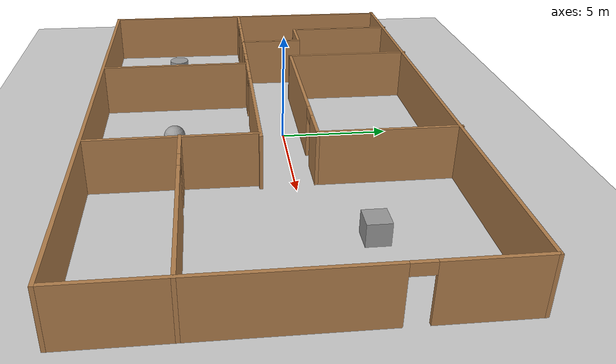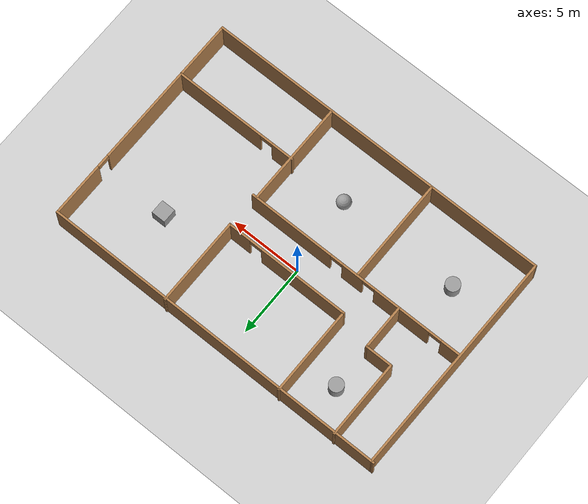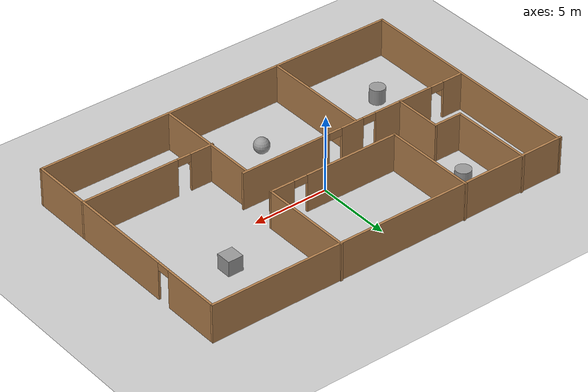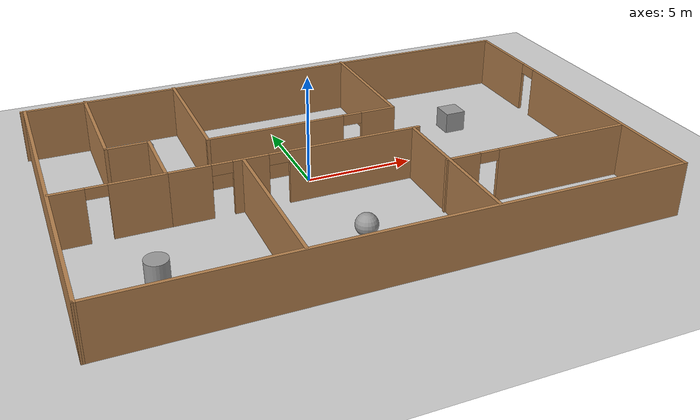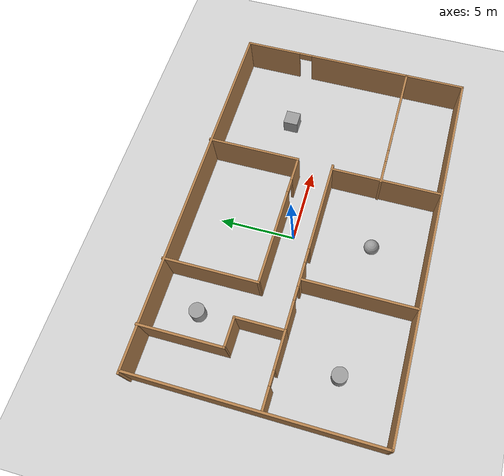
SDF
<sdf version="1.7">
 <world name="default">
  <model name="ground_plane">
   <static>1</static>
   <link name="link">
    <collision name="collision">
     <geometry><plane><normal>0 0 1</normal><size>100 100</size></plane></geometry>
     <surface>
      <contact><collide_bitmask>65535</collide_bitmask></contact>
      <friction><ode><mu>100</mu><mu2>50</mu2></ode></friction>
     </surface>
    </collision>
    <visual name="visual">
     <cast_shadows>0</cast_shadows>
     <geometry><plane><normal>0 0 1</normal><size>100 100</size></plane></geometry>
     <material>
      <script><uri>file://media/materials/scripts/gazebo.material</uri><name>Gazebo/Grey</name></script>
     </material>
    </visual>
   </link>
  </model>
  <model name="aki_home">
   <link name="Wall_35">
    <pose>0.000337 7.80034 0 0 -0 3.14159</pose>
    <visual name="Wall_35_Visual">
     <pose>0 0 1.25 0 -0 0</pose>
     <geometry><box><size>24.75 0.15 2.5</size></box></geometry>
     <material>
      <script><uri>file://media/materials/scripts/gazebo.material</uri><name>Gazebo/Wood</name></script>
      <ambient>1 1 1 1</ambient>
      <shader type="pixel"/>
     </material>
     <meta><layer>0</layer></meta>
    </visual>
    <collision name="Wall_35_Collision">
     <pose>0 0 1.25 0 -0 0</pose>
     <geometry><box><size>24.75 0.15 2.5</size></box></geometry>
     <surface>
      <friction>
       <ode><mu>1</mu><mu2>1</mu2><fdir1>0 0 0</fdir1><slip1>0</slip1><slip2>0</slip2></ode>
       <torsional>
        <coefficient>1</coefficient>
        <patch_radius>0</patch_radius>
        <surface_radius>0</surface_radius>
        <use_patch_radius>1</use_patch_radius>
        <ode><slip>0</slip></ode>
       </torsional>
      </friction>
      <bounce><restitution_coefficient>0</restitution_coefficient><threshold>1e+06</threshold></bounce>
      <contact>
       <collide_without_contact>0</collide_without_contact>
       <collide_without_contact_bitmask>1</collide_without_contact_bitmask>
       <collide_bitmask>1</collide_bitmask>
       <ode>
        <soft_cfm>0</soft_cfm>
        <soft_erp>0.2</soft_erp>
        <kp>1e+13</kp>
        <kd>1</kd>
        <max_vel>0.01</max_vel>
        <min_depth>0</min_depth>
       </ode>
       <bullet>
        <split_impulse>1</split_impulse>
        <split_impulse_penetration_threshold>-0.01</split_impulse_penetration_threshold>
        <soft_cfm>0</soft_cfm>
        <soft_erp>0.2</soft_erp>
        <kp>1e+13</kp>
        <kd>1</kd>
       </bullet>
      </contact>
     </surface>
    </collision>
   </link>
   <link name="Wall_36">
    <pose>-12.2289 -0.035042 0 0 0 -1.57983</pose>
    <visual name="Wall_36_Visual">
     <pose>0 0 1.25 0 -0 0</pose>
     <geometry><box><size>15.8214 0.15 2.5</size></box></geometry>
     <material>
      <script><uri>file://media/materials/scripts/gazebo.material</uri><name>Gazebo/Wood</name></script>
      <ambient>1 1 1 1</ambient>
      <shader type="pixel"/>
     </material>
     <meta><layer>0</layer></meta>
    </visual>
    <collision name="Wall_36_Collision">
     <pose>0 0 1.25 0 -0 0</pose>
     <geometry><box><size>15.8214 0.15 2.5</size></box></geometry>
     <surface>
      <friction>
       <ode><mu>1</mu><mu2>1</mu2><fdir1>0 0 0</fdir1><slip1>0</slip1><slip2>0</slip2></ode>
       <torsional>
        <coefficient>1</coefficient>
        <patch_radius>0</patch_radius>
        <surface_radius>0</surface_radius>
        <use_patch_radius>1</use_patch_radius>
        <ode><slip>0</slip></ode>
       </torsional>
      </friction>
      <bounce><restitution_coefficient>0</restitution_coefficient><threshold>1e+06</threshold></bounce>
      <contact>
       <collide_without_contact>0</collide_without_contact>
       <collide_without_contact_bitmask>1</collide_without_contact_bitmask>
       <collide_bitmask>1</collide_bitmask>
       <ode>
        <soft_cfm>0</soft_cfm>
        <soft_erp>0.2</soft_erp>
        <kp>1e+13</kp>
        <kd>1</kd>
        <max_vel>0.01</max_vel>
        <min_depth>0</min_depth>
       </ode>
       <bullet>
        <split_impulse>1</split_impulse>
        <split_impulse_penetration_threshold>-0.01</split_impulse_penetration_threshold>
        <soft_cfm>0</soft_cfm>
        <soft_erp>0.2</soft_erp>
        <kp>1e+13</kp>
        <kd>1</kd>
       </bullet>
      </contact>
     </surface>
    </collision>
   </link>
   <link name="Wall_37">
    <pose>0.000337 -7.87042 0 0 -0 0</pose>
    <visual name="Wall_37_Visual">
     <pose>0 0 1.25 0 -0 0</pose>
     <geometry><box><size>24.75 0.15 2.5</size></box></geometry>
     <material>
      <script><uri>file://media/materials/scripts/gazebo.material</uri><name>Gazebo/Wood</name></script>
      <ambient>1 1 1 1</ambient>
      <shader type="pixel"/>
     </material>
     <meta><layer>0</layer></meta>
    </visual>
    <collision name="Wall_37_Collision">
     <pose>0 0 1.25 0 -0 0</pose>
     <geometry><box><size>24.75 0.15 2.5</size></box></geometry>
     <surface>
      <friction>
       <ode><mu>1</mu><mu2>1</mu2><fdir1>0 0 0</fdir1><slip1>0</slip1><slip2>0</slip2></ode>
       <torsional>
        <coefficient>1</coefficient>
        <patch_radius>0</patch_radius>
        <surface_radius>0</surface_radius>
        <use_patch_radius>1</use_patch_radius>
        <ode><slip>0</slip></ode>
       </torsional>
      </friction>
      <bounce><restitution_coefficient>0</restitution_coefficient><threshold>1e+06</threshold></bounce>
      <contact>
       <collide_without_contact>0</collide_without_contact>
       <collide_without_contact_bitmask>1</collide_without_contact_bitmask>
       <collide_bitmask>1</collide_bitmask>
       <ode>
        <soft_cfm>0</soft_cfm>
        <soft_erp>0.2</soft_erp>
        <kp>1e+13</kp>
        <kd>1</kd>
        <max_vel>0.01</max_vel>
        <min_depth>0</min_depth>
       </ode>
       <bullet>
        <split_impulse>1</split_impulse>
        <split_impulse_penetration_threshold>-0.01</split_impulse_penetration_threshold>
        <soft_cfm>0</soft_cfm>
        <soft_erp>0.2</soft_erp>
        <kp>1e+13</kp>
        <kd>1</kd>
       </bullet>
      </contact>
     </surface>
    </collision>
   </link>
   <link name="Wall_38">
    <pose>12.3003 -0.070421 0 0 -0 1.5708</pose>
    <visual name="Wall_38_Visual_0">
     <pose>-2.34983 0 1.25 0 -0 0</pose>
     <geometry><box><size>11.0503 0.15 2.5</size></box></geometry>
     <material>
      <script><uri>file://media/materials/scripts/gazebo.material</uri><name>Gazebo/Wood</name></script>
      <ambient>1 1 1 1</ambient>
      <shader type="pixel"/>
     </material>
     <meta><layer>0</layer></meta>
    </visual>
    <visual name="Wall_38_Visual_1">
     <pose>5.97517 0 1.25 0 -0 0</pose>
     <geometry><box><size>3.79967 0.15 2.5</size></box></geometry>
     <material>
      <script><uri>file://media/materials/scripts/gazebo.material</uri><name>Gazebo/Wood</name></script>
      <ambient>1 1 1 1</ambient>
      <shader type="pixel"/>
     </material>
     <meta><layer>0</layer></meta>
    </visual>
    <visual name="Wall_38_Visual_2">
     <pose>3.62533 0 2.25 0 -0 0</pose>
     <geometry><box><size>0.9 0.15 0.5</size></box></geometry>
     <material>
      <script><uri>file://media/materials/scripts/gazebo.material</uri><name>Gazebo/Wood</name></script>
      <ambient>1 1 1 1</ambient>
      <shader type="pixel"/>
     </material>
     <meta><layer>0</layer></meta>
    </visual>
    <collision name="Wall_38_Collision_0">
     <pose>-2.34983 0 1.25 0 -0 0</pose>
     <geometry><box><size>11.0503 0.15 2.5</size></box></geometry>
     <surface>
      <friction>
       <ode><mu>1</mu><mu2>1</mu2><fdir1>0 0 0</fdir1><slip1>0</slip1><slip2>0</slip2></ode>
       <torsional>
        <coefficient>1</coefficient>
        <patch_radius>0</patch_radius>
        <surface_radius>0</surface_radius>
        <use_patch_radius>1</use_patch_radius>
        <ode><slip>0</slip></ode>
       </torsional>
      </friction>
      <bounce><restitution_coefficient>0</restitution_coefficient><threshold>1e+06</threshold></bounce>
      <contact>
       <collide_without_contact>0</collide_without_contact>
       <collide_without_contact_bitmask>1</collide_without_contact_bitmask>
       <collide_bitmask>1</collide_bitmask>
       <ode>
        <soft_cfm>0</soft_cfm>
        <soft_erp>0.2</soft_erp>
        <kp>1e+13</kp>
        <kd>1</kd>
        <max_vel>0.01</max_vel>
        <min_depth>0</min_depth>
       </ode>
       <bullet>
        <split_impulse>1</split_impulse>
        <split_impulse_penetration_threshold>-0.01</split_impulse_penetration_threshold>
        <soft_cfm>0</soft_cfm>
        <soft_erp>0.2</soft_erp>
        <kp>1e+13</kp>
        <kd>1</kd>
       </bullet>
      </contact>
     </surface>
    </collision>
    <collision name="Wall_38_Collision_1">
     <pose>5.97517 0 1.25 0 -0 0</pose>
     <geometry><box><size>3.79967 0.15 2.5</size></box></geometry>
     <surface>
      <friction>
       <ode><mu>1</mu><mu2>1</mu2><fdir1>0 0 0</fdir1><slip1>0</slip1><slip2>0</slip2></ode>
       <torsional>
        <coefficient>1</coefficient>
        <patch_radius>0</patch_radius>
        <surface_radius>0</surface_radius>
        <use_patch_radius>1</use_patch_radius>
        <ode><slip>0</slip></ode>
       </torsional>
      </friction>
      <bounce><restitution_coefficient>0</restitution_coefficient><threshold>1e+06</threshold></bounce>
      <contact>
       <collide_without_contact>0</collide_without_contact>
       <collide_without_contact_bitmask>1</collide_without_contact_bitmask>
       <collide_bitmask>1</collide_bitmask>
       <ode>
        <soft_cfm>0</soft_cfm>
        <soft_erp>0.2</soft_erp>
        <kp>1e+13</kp>
        <kd>1</kd>
        <max_vel>0.01</max_vel>
        <min_depth>0</min_depth>
       </ode>
       <bullet>
        <split_impulse>1</split_impulse>
        <split_impulse_penetration_threshold>-0.01</split_impulse_penetration_threshold>
        <soft_cfm>0</soft_cfm>
        <soft_erp>0.2</soft_erp>
        <kp>1e+13</kp>
        <kd>1</kd>
       </bullet>
      </contact>
     </surface>
    </collision>
    <collision name="Wall_38_Collision_2">
     <pose>3.62533 0 2.25 0 -0 0</pose>
     <geometry><box><size>0.9 0.15 0.5</size></box></geometry>
     <surface>
      <friction>
       <ode><mu>1</mu><mu2>1</mu2><fdir1>0 0 0</fdir1><slip1>0</slip1><slip2>0</slip2></ode>
       <torsional>
        <coefficient>1</coefficient>
        <patch_radius>0</patch_radius>
        <surface_radius>0</surface_radius>
        <use_patch_radius>1</use_patch_radius>
        <ode><slip>0</slip></ode>
       </torsional>
      </friction>
      <bounce><restitution_coefficient>0</restitution_coefficient><threshold>1e+06</threshold></bounce>
      <contact>
       <collide_without_contact>0</collide_without_contact>
       <collide_without_contact_bitmask>1</collide_without_contact_bitmask>
       <collide_bitmask>1</collide_bitmask>
       <ode>
        <soft_cfm>0</soft_cfm>
        <soft_erp>0.2</soft_erp>
        <kp>1e+13</kp>
        <kd>1</kd>
        <max_vel>0.01</max_vel>
        <min_depth>0</min_depth>
       </ode>
       <bullet>
        <split_impulse>1</split_impulse>
        <split_impulse_penetration_threshold>-0.01</split_impulse_penetration_threshold>
        <soft_cfm>0</soft_cfm>
        <soft_erp>0.2</soft_erp>
        <kp>1e+13</kp>
        <kd>1</kd>
       </bullet>
      </contact>
     </surface>
    </collision>
   </link>
   <link name="Wall_40">
    <pose>3.66798 4.82109 0 0 0 -1.5708</pose>
    <visual name="Wall_40_Visual">
     <pose>0 0 1.25 0 -0 0</pose>
     <geometry><box><size>6.25 0.15 2.5</size></box></geometry>
     <material>
      <script><uri>file://media/materials/scripts/gazebo.material</uri><name>Gazebo/Wood</name></script>
      <ambient>1 1 1 1</ambient>
      <shader type="pixel"/>
     </material>
     <meta><layer>0</layer></meta>
    </visual>
    <collision name="Wall_40_Collision">
     <pose>0 0 1.25 0 -0 0</pose>
     <geometry><box><size>6.25 0.15 2.5</size></box></geometry>
     <surface>
      <friction>
       <ode><mu>1</mu><mu2>1</mu2><fdir1>0 0 0</fdir1><slip1>0</slip1><slip2>0</slip2></ode>
       <torsional>
        <coefficient>1</coefficient>
        <patch_radius>0</patch_radius>
        <surface_radius>0</surface_radius>
        <use_patch_radius>1</use_patch_radius>
        <ode><slip>0</slip></ode>
       </torsional>
      </friction>
      <bounce><restitution_coefficient>0</restitution_coefficient><threshold>1e+06</threshold></bounce>
      <contact>
       <collide_without_contact>0</collide_without_contact>
       <collide_without_contact_bitmask>1</collide_without_contact_bitmask>
       <collide_bitmask>1</collide_bitmask>
       <ode>
        <soft_cfm>0</soft_cfm>
        <soft_erp>0.2</soft_erp>
        <kp>1e+13</kp>
        <kd>1</kd>
        <max_vel>0.01</max_vel>
        <min_depth>0</min_depth>
       </ode>
       <bullet>
        <split_impulse>1</split_impulse>
        <split_impulse_penetration_threshold>-0.01</split_impulse_penetration_threshold>
        <soft_cfm>0</soft_cfm>
        <soft_erp>0.2</soft_erp>
        <kp>1e+13</kp>
        <kd>1</kd>
       </bullet>
      </contact>
     </surface>
    </collision>
   </link>
   <link name="Wall_41">
    <pose>-0.757024 1.77109 0 0 -0 3.14159</pose>
    <visual name="Wall_41_Visual_0">
     <pose>-3.66152 0 1.25 0 -0 0</pose>
     <geometry><box><size>1.67695 0.15 2.5</size></box></geometry>
     <material>
      <script><uri>file://media/materials/scripts/gazebo.material</uri><name>Gazebo/Wood</name></script>
      <ambient>1 1 1 1</ambient>
      <shader type="pixel"/>
     </material>
     <meta><layer>0</layer></meta>
    </visual>
    <visual name="Wall_41_Visual_1">
     <pose>1.28848 0 1.25 0 -0 0</pose>
     <geometry><box><size>6.42305 0.15 2.5</size></box></geometry>
     <material>
      <script><uri>file://media/materials/scripts/gazebo.material</uri><name>Gazebo/Wood</name></script>
      <ambient>1 1 1 1</ambient>
      <shader type="pixel"/>
     </material>
     <meta><layer>0</layer></meta>
    </visual>
    <visual name="Wall_41_Visual_2">
     <pose>-2.37304 0 2.25 0 -0 0</pose>
     <geometry><box><size>0.9 0.15 0.5</size></box></geometry>
     <material>
      <script><uri>file://media/materials/scripts/gazebo.material</uri><name>Gazebo/Wood</name></script>
      <ambient>1 1 1 1</ambient>
      <shader type="pixel"/>
     </material>
     <meta><layer>0</layer></meta>
    </visual>
    <collision name="Wall_41_Collision_0">
     <pose>-3.66152 0 1.25 0 -0 0</pose>
     <geometry><box><size>1.67695 0.15 2.5</size></box></geometry>
     <surface>
      <friction>
       <ode><mu>1</mu><mu2>1</mu2><fdir1>0 0 0</fdir1><slip1>0</slip1><slip2>0</slip2></ode>
       <torsional>
        <coefficient>1</coefficient>
        <patch_radius>0</patch_radius>
        <surface_radius>0</surface_radius>
        <use_patch_radius>1</use_patch_radius>
        <ode><slip>0</slip></ode>
       </torsional>
      </friction>
      <bounce><restitution_coefficient>0</restitution_coefficient><threshold>1e+06</threshold></bounce>
      <contact>
       <collide_without_contact>0</collide_without_contact>
       <collide_without_contact_bitmask>1</collide_without_contact_bitmask>
       <collide_bitmask>1</collide_bitmask>
       <ode>
        <soft_cfm>0</soft_cfm>
        <soft_erp>0.2</soft_erp>
        <kp>1e+13</kp>
        <kd>1</kd>
        <max_vel>0.01</max_vel>
        <min_depth>0</min_depth>
       </ode>
       <bullet>
        <split_impulse>1</split_impulse>
        <split_impulse_penetration_threshold>-0.01</split_impulse_penetration_threshold>
        <soft_cfm>0</soft_cfm>
        <soft_erp>0.2</soft_erp>
        <kp>1e+13</kp>
        <kd>1</kd>
       </bullet>
      </contact>
     </surface>
    </collision>
    <collision name="Wall_41_Collision_1">
     <pose>1.28848 0 1.25 0 -0 0</pose>
     <geometry><box><size>6.42305 0.15 2.5</size></box></geometry>
     <surface>
      <friction>
       <ode><mu>1</mu><mu2>1</mu2><fdir1>0 0 0</fdir1><slip1>0</slip1><slip2>0</slip2></ode>
       <torsional>
        <coefficient>1</coefficient>
        <patch_radius>0</patch_radius>
        <surface_radius>0</surface_radius>
        <use_patch_radius>1</use_patch_radius>
        <ode><slip>0</slip></ode>
       </torsional>
      </friction>
      <bounce><restitution_coefficient>0</restitution_coefficient><threshold>1e+06</threshold></bounce>
      <contact>
       <collide_without_contact>0</collide_without_contact>
       <collide_without_contact_bitmask>1</collide_without_contact_bitmask>
       <collide_bitmask>1</collide_bitmask>
       <ode>
        <soft_cfm>0</soft_cfm>
        <soft_erp>0.2</soft_erp>
        <kp>1e+13</kp>
        <kd>1</kd>
        <max_vel>0.01</max_vel>
        <min_depth>0</min_depth>
       </ode>
       <bullet>
        <split_impulse>1</split_impulse>
        <split_impulse_penetration_threshold>-0.01</split_impulse_penetration_threshold>
        <soft_cfm>0</soft_cfm>
        <soft_erp>0.2</soft_erp>
        <kp>1e+13</kp>
        <kd>1</kd>
       </bullet>
      </contact>
     </surface>
    </collision>
    <collision name="Wall_41_Collision_2">
     <pose>-2.37304 0 2.25 0 -0 0</pose>
     <geometry><box><size>0.9 0.15 0.5</size></box></geometry>
     <surface>
      <friction>
       <ode><mu>1</mu><mu2>1</mu2><fdir1>0 0 0</fdir1><slip1>0</slip1><slip2>0</slip2></ode>
       <torsional>
        <coefficient>1</coefficient>
        <patch_radius>0</patch_radius>
        <surface_radius>0</surface_radius>
        <use_patch_radius>1</use_patch_radius>
        <ode><slip>0</slip></ode>
       </torsional>
      </friction>
      <bounce><restitution_coefficient>0</restitution_coefficient><threshold>1e+06</threshold></bounce>
      <contact>
       <collide_without_contact>0</collide_without_contact>
       <collide_without_contact_bitmask>1</collide_without_contact_bitmask>
       <collide_bitmask>1</collide_bitmask>
       <ode>
        <soft_cfm>0</soft_cfm>
        <soft_erp>0.2</soft_erp>
        <kp>1e+13</kp>
        <kd>1</kd>
        <max_vel>0.01</max_vel>
        <min_depth>0</min_depth>
       </ode>
       <bullet>
        <split_impulse>1</split_impulse>
        <split_impulse_penetration_threshold>-0.01</split_impulse_penetration_threshold>
        <soft_cfm>0</soft_cfm>
        <soft_erp>0.2</soft_erp>
        <kp>1e+13</kp>
        <kd>1</kd>
       </bullet>
      </contact>
     </surface>
    </collision>
   </link>
   <link name="Wall_42">
    <pose>-5.18202 4.82109 0 0 -0 1.5708</pose>
    <visual name="Wall_42_Visual">
     <pose>0 0 1.25 0 -0 0</pose>
     <geometry><box><size>6.25 0.15 2.5</size></box></geometry>
     <material>
      <script><uri>file://media/materials/scripts/gazebo.material</uri><name>Gazebo/Wood</name></script>
      <ambient>1 1 1 1</ambient>
      <shader type="pixel"/>
     </material>
     <meta><layer>0</layer></meta>
    </visual>
    <collision name="Wall_42_Collision">
     <pose>0 0 1.25 0 -0 0</pose>
     <geometry><box><size>6.25 0.15 2.5</size></box></geometry>
     <surface>
      <friction>
       <ode><mu>1</mu><mu2>1</mu2><fdir1>0 0 0</fdir1><slip1>0</slip1><slip2>0</slip2></ode>
       <torsional>
        <coefficient>1</coefficient>
        <patch_radius>0</patch_radius>
        <surface_radius>0</surface_radius>
        <use_patch_radius>1</use_patch_radius>
        <ode><slip>0</slip></ode>
       </torsional>
      </friction>
      <bounce><restitution_coefficient>0</restitution_coefficient><threshold>1e+06</threshold></bounce>
      <contact>
       <collide_without_contact>0</collide_without_contact>
       <collide_without_contact_bitmask>1</collide_without_contact_bitmask>
       <collide_bitmask>1</collide_bitmask>
       <ode>
        <soft_cfm>0</soft_cfm>
        <soft_erp>0.2</soft_erp>
        <kp>1e+13</kp>
        <kd>1</kd>
        <max_vel>0.01</max_vel>
        <min_depth>0</min_depth>
       </ode>
       <bullet>
        <split_impulse>1</split_impulse>
        <split_impulse_penetration_threshold>-0.01</split_impulse_penetration_threshold>
        <soft_cfm>0</soft_cfm>
        <soft_erp>0.2</soft_erp>
        <kp>1e+13</kp>
        <kd>1</kd>
       </bullet>
      </contact>
     </surface>
    </collision>
   </link>
   <link name="Wall_49">
    <pose>-4.32757 -4.24051 0 0 0 -1.5708</pose>
    <visual name="Wall_49_Visual">
     <pose>0 0 1.25 0 -0 0</pose>
     <geometry><box><size>7.25 0.15 2.5</size></box></geometry>
     <material>
      <script><uri>file://media/materials/scripts/gazebo.material</uri><name>Gazebo/Wood</name></script>
      <ambient>1 1 1 1</ambient>
      <shader type="pixel"/>
     </material>
     <meta><layer>0</layer></meta>
    </visual>
    <collision name="Wall_49_Collision">
     <pose>0 0 1.25 0 -0 0</pose>
     <geometry><box><size>7.25 0.15 2.5</size></box></geometry>
     <surface>
      <friction>
       <ode><mu>1</mu><mu2>1</mu2><fdir1>0 0 0</fdir1><slip1>0</slip1><slip2>0</slip2></ode>
       <torsional>
        <coefficient>1</coefficient>
        <patch_radius>0</patch_radius>
        <surface_radius>0</surface_radius>
        <use_patch_radius>1</use_patch_radius>
        <ode><slip>0</slip></ode>
       </torsional>
      </friction>
      <bounce><restitution_coefficient>0</restitution_coefficient><threshold>1e+06</threshold></bounce>
      <contact>
       <collide_without_contact>0</collide_without_contact>
       <collide_without_contact_bitmask>1</collide_without_contact_bitmask>
       <collide_bitmask>1</collide_bitmask>
       <ode>
        <soft_cfm>0</soft_cfm>
        <soft_erp>0.2</soft_erp>
        <kp>1e+13</kp>
        <kd>1</kd>
        <max_vel>0.01</max_vel>
        <min_depth>0</min_depth>
       </ode>
       <bullet>
        <split_impulse>1</split_impulse>
        <split_impulse_penetration_threshold>-0.01</split_impulse_penetration_threshold>
        <soft_cfm>0</soft_cfm>
        <soft_erp>0.2</soft_erp>
        <kp>1e+13</kp>
        <kd>1</kd>
       </bullet>
      </contact>
     </surface>
    </collision>
   </link>
   <link name="Wall_51">
    <pose>3.52646 -4.21622 0 0 -0 1.5708</pose>
    <visual name="Wall_51_Visual">
     <pose>0 0 1.25 0 -0 0</pose>
     <geometry><box><size>7.25 0.15 2.5</size></box></geometry>
     <material>
      <script><uri>file://media/materials/scripts/gazebo.material</uri><name>Gazebo/Wood</name></script>
      <ambient>1 1 1 1</ambient>
      <shader type="pixel"/>
     </material>
     <meta><layer>0</layer></meta>
    </visual>
    <collision name="Wall_51_Collision">
     <pose>0 0 1.25 0 -0 0</pose>
     <geometry><box><size>7.25 0.15 2.5</size></box></geometry>
     <surface>
      <friction>
       <ode><mu>1</mu><mu2>1</mu2><fdir1>0 0 0</fdir1><slip1>0</slip1><slip2>0</slip2></ode>
       <torsional>
        <coefficient>1</coefficient>
        <patch_radius>0</patch_radius>
        <surface_radius>0</surface_radius>
        <use_patch_radius>1</use_patch_radius>
        <ode><slip>0</slip></ode>
       </torsional>
      </friction>
      <bounce><restitution_coefficient>0</restitution_coefficient><threshold>1e+06</threshold></bounce>
      <contact>
       <collide_without_contact>0</collide_without_contact>
       <collide_without_contact_bitmask>1</collide_without_contact_bitmask>
       <collide_bitmask>1</collide_bitmask>
       <ode>
        <soft_cfm>0</soft_cfm>
        <soft_erp>0.2</soft_erp>
        <kp>1e+13</kp>
        <kd>1</kd>
        <max_vel>0.01</max_vel>
        <min_depth>0</min_depth>
       </ode>
       <bullet>
        <split_impulse>1</split_impulse>
        <split_impulse_penetration_threshold>-0.01</split_impulse_penetration_threshold>
        <soft_cfm>0</soft_cfm>
        <soft_erp>0.2</soft_erp>
        <kp>1e+13</kp>
        <kd>1</kd>
       </bullet>
      </contact>
     </surface>
    </collision>
   </link>
   <link name="Wall_54">
    <pose>7.87534 -3.87458 0 0 -0 3.14159</pose>
    <visual name="Wall_54_Visual_0">
     <pose>-1.25578 0 1.25 0 -0 0</pose>
     <geometry><box><size>6.48843 0.15 2.5</size></box></geometry>
     <material>
      <script><uri>file://media/materials/scripts/gazebo.material</uri><name>Gazebo/Wood</name></script>
      <ambient>1 1 1 1</ambient>
      <shader type="pixel"/>
     </material>
     <meta><layer>0</layer></meta>
    </visual>
    <visual name="Wall_54_Visual_1">
     <pose>3.69422 0 1.25 0 -0 0</pose>
     <geometry><box><size>1.61157 0.15 2.5</size></box></geometry>
     <material>
      <script><uri>file://media/materials/scripts/gazebo.material</uri><name>Gazebo/Wood</name></script>
      <ambient>1 1 1 1</ambient>
      <shader type="pixel"/>
     </material>
     <meta><layer>0</layer></meta>
    </visual>
    <visual name="Wall_54_Visual_2">
     <pose>2.43843 0 2.25 0 -0 0</pose>
     <geometry><box><size>0.9 0.15 0.5</size></box></geometry>
     <material>
      <script><uri>file://media/materials/scripts/gazebo.material</uri><name>Gazebo/Wood</name></script>
      <ambient>1 1 1 1</ambient>
      <shader type="pixel"/>
     </material>
     <meta><layer>0</layer></meta>
    </visual>
    <collision name="Wall_54_Collision_0">
     <pose>-1.25578 0 1.25 0 -0 0</pose>
     <geometry><box><size>6.48843 0.15 2.5</size></box></geometry>
     <surface>
      <friction>
       <ode><mu>1</mu><mu2>1</mu2><fdir1>0 0 0</fdir1><slip1>0</slip1><slip2>0</slip2></ode>
       <torsional>
        <coefficient>1</coefficient>
        <patch_radius>0</patch_radius>
        <surface_radius>0</surface_radius>
        <use_patch_radius>1</use_patch_radius>
        <ode><slip>0</slip></ode>
       </torsional>
      </friction>
      <bounce><restitution_coefficient>0</restitution_coefficient><threshold>1e+06</threshold></bounce>
      <contact>
       <collide_without_contact>0</collide_without_contact>
       <collide_without_contact_bitmask>1</collide_without_contact_bitmask>
       <collide_bitmask>1</collide_bitmask>
       <ode>
        <soft_cfm>0</soft_cfm>
        <soft_erp>0.2</soft_erp>
        <kp>1e+13</kp>
        <kd>1</kd>
        <max_vel>0.01</max_vel>
        <min_depth>0</min_depth>
       </ode>
       <bullet>
        <split_impulse>1</split_impulse>
        <split_impulse_penetration_threshold>-0.01</split_impulse_penetration_threshold>
        <soft_cfm>0</soft_cfm>
        <soft_erp>0.2</soft_erp>
        <kp>1e+13</kp>
        <kd>1</kd>
       </bullet>
      </contact>
     </surface>
    </collision>
    <collision name="Wall_54_Collision_1">
     <pose>3.69422 0 1.25 0 -0 0</pose>
     <geometry><box><size>1.61157 0.15 2.5</size></box></geometry>
     <surface>
      <friction>
       <ode><mu>1</mu><mu2>1</mu2><fdir1>0 0 0</fdir1><slip1>0</slip1><slip2>0</slip2></ode>
       <torsional>
        <coefficient>1</coefficient>
        <patch_radius>0</patch_radius>
        <surface_radius>0</surface_radius>
        <use_patch_radius>1</use_patch_radius>
        <ode><slip>0</slip></ode>
       </torsional>
      </friction>
      <bounce><restitution_coefficient>0</restitution_coefficient><threshold>1e+06</threshold></bounce>
      <contact>
       <collide_without_contact>0</collide_without_contact>
       <collide_without_contact_bitmask>1</collide_without_contact_bitmask>
       <collide_bitmask>1</collide_bitmask>
       <ode>
        <soft_cfm>0</soft_cfm>
        <soft_erp>0.2</soft_erp>
        <kp>1e+13</kp>
        <kd>1</kd>
        <max_vel>0.01</max_vel>
        <min_depth>0</min_depth>
       </ode>
       <bullet>
        <split_impulse>1</split_impulse>
        <split_impulse_penetration_threshold>-0.01</split_impulse_penetration_threshold>
        <soft_cfm>0</soft_cfm>
        <soft_erp>0.2</soft_erp>
        <kp>1e+13</kp>
        <kd>1</kd>
       </bullet>
      </contact>
     </surface>
    </collision>
    <collision name="Wall_54_Collision_2">
     <pose>2.43843 0 2.25 0 -0 0</pose>
     <geometry><box><size>0.9 0.15 0.5</size></box></geometry>
     <surface>
      <friction>
       <ode><mu>1</mu><mu2>1</mu2><fdir1>0 0 0</fdir1><slip1>0</slip1><slip2>0</slip2></ode>
       <torsional>
        <coefficient>1</coefficient>
        <patch_radius>0</patch_radius>
        <surface_radius>0</surface_radius>
        <use_patch_radius>1</use_patch_radius>
        <ode><slip>0</slip></ode>
       </torsional>
      </friction>
      <bounce><restitution_coefficient>0</restitution_coefficient><threshold>1e+06</threshold></bounce>
      <contact>
       <collide_without_contact>0</collide_without_contact>
       <collide_without_contact_bitmask>1</collide_without_contact_bitmask>
       <collide_bitmask>1</collide_bitmask>
       <ode>
        <soft_cfm>0</soft_cfm>
        <soft_erp>0.2</soft_erp>
        <kp>1e+13</kp>
        <kd>1</kd>
        <max_vel>0.01</max_vel>
        <min_depth>0</min_depth>
       </ode>
       <bullet>
        <split_impulse>1</split_impulse>
        <split_impulse_penetration_threshold>-0.01</split_impulse_penetration_threshold>
        <soft_cfm>0</soft_cfm>
        <soft_erp>0.2</soft_erp>
        <kp>1e+13</kp>
        <kd>1</kd>
       </bullet>
      </contact>
     </surface>
    </collision>
   </link>
   <link name="Wall_56">
    <pose>-9.42208 5.19609 0 0 0 -1.5708</pose>
    <visual name="Wall_56_Visual">
     <pose>0 0 1.25 0 -0 0</pose>
     <geometry><box><size>5.5 0.15 2.5</size></box></geometry>
     <material>
      <script><uri>file://media/materials/scripts/gazebo.material</uri><name>Gazebo/Wood</name></script>
      <ambient>1 1 1 1</ambient>
      <shader type="pixel"/>
     </material>
     <meta><layer>0</layer></meta>
    </visual>
    <collision name="Wall_56_Collision">
     <pose>0 0 1.25 0 -0 0</pose>
     <geometry><box><size>5.5 0.15 2.5</size></box></geometry>
     <surface>
      <friction>
       <ode><mu>1</mu><mu2>1</mu2><fdir1>0 0 0</fdir1><slip1>0</slip1><slip2>0</slip2></ode>
       <torsional>
        <coefficient>1</coefficient>
        <patch_radius>0</patch_radius>
        <surface_radius>0</surface_radius>
        <use_patch_radius>1</use_patch_radius>
        <ode><slip>0</slip></ode>
       </torsional>
      </friction>
      <bounce><restitution_coefficient>0</restitution_coefficient><threshold>1e+06</threshold></bounce>
      <contact>
       <collide_without_contact>0</collide_without_contact>
       <collide_without_contact_bitmask>1</collide_without_contact_bitmask>
       <collide_bitmask>1</collide_bitmask>
       <ode>
        <soft_cfm>0</soft_cfm>
        <soft_erp>0.2</soft_erp>
        <kp>1e+13</kp>
        <kd>1</kd>
        <max_vel>0.01</max_vel>
        <min_depth>0</min_depth>
       </ode>
       <bullet>
        <split_impulse>1</split_impulse>
        <split_impulse_penetration_threshold>-0.01</split_impulse_penetration_threshold>
        <soft_cfm>0</soft_cfm>
        <soft_erp>0.2</soft_erp>
        <kp>1e+13</kp>
        <kd>1</kd>
       </bullet>
      </contact>
     </surface>
    </collision>
   </link>
   <link name="Wall_57">
    <pose>-8.49708 2.52109 0 0 -0 0</pose>
    <visual name="Wall_57_Visual">
     <pose>0 0 1.25 0 -0 0</pose>
     <geometry><box><size>2 0.15 2.5</size></box></geometry>
     <material>
      <script><uri>file://media/materials/scripts/gazebo.material</uri><name>Gazebo/Wood</name></script>
      <ambient>1 1 1 1</ambient>
      <shader type="pixel"/>
     </material>
     <meta><layer>0</layer></meta>
    </visual>
    <collision name="Wall_57_Collision">
     <pose>0 0 1.25 0 -0 0</pose>
     <geometry><box><size>2 0.15 2.5</size></box></geometry>
     <surface>
      <friction>
       <ode><mu>1</mu><mu2>1</mu2><fdir1>0 0 0</fdir1><slip1>0</slip1><slip2>0</slip2></ode>
       <torsional>
        <coefficient>1</coefficient>
        <patch_radius>0</patch_radius>
        <surface_radius>0</surface_radius>
        <use_patch_radius>1</use_patch_radius>
        <ode><slip>0</slip></ode>
       </torsional>
      </friction>
      <bounce><restitution_coefficient>0</restitution_coefficient><threshold>1e+06</threshold></bounce>
      <contact>
       <collide_without_contact>0</collide_without_contact>
       <collide_without_contact_bitmask>1</collide_without_contact_bitmask>
       <collide_bitmask>1</collide_bitmask>
       <ode>
        <soft_cfm>0</soft_cfm>
        <soft_erp>0.2</soft_erp>
        <kp>1e+13</kp>
        <kd>1</kd>
        <max_vel>0.01</max_vel>
        <min_depth>0</min_depth>
       </ode>
       <bullet>
        <split_impulse>1</split_impulse>
        <split_impulse_penetration_threshold>-0.01</split_impulse_penetration_threshold>
        <soft_cfm>0</soft_cfm>
        <soft_erp>0.2</soft_erp>
        <kp>1e+13</kp>
        <kd>1</kd>
       </bullet>
      </contact>
     </surface>
    </collision>
   </link>
   <link name="Wall_58">
    <pose>-7.57208 0.971093 0 0 0 -1.5708</pose>
    <visual name="Wall_58_Visual">
     <pose>0 0 1.25 0 -0 0</pose>
     <geometry><box><size>3.25 0.15 2.5</size></box></geometry>
     <material>
      <script><uri>file://media/materials/scripts/gazebo.material</uri><name>Gazebo/Wood</name></script>
      <ambient>1 1 1 1</ambient>
      <shader type="pixel"/>
     </material>
     <meta><layer>0</layer></meta>
    </visual>
    <collision name="Wall_58_Collision">
     <pose>0 0 1.25 0 -0 0</pose>
     <geometry><box><size>3.25 0.15 2.5</size></box></geometry>
     <surface>
      <friction>
       <ode><mu>1</mu><mu2>1</mu2><fdir1>0 0 0</fdir1><slip1>0</slip1><slip2>0</slip2></ode>
       <torsional>
        <coefficient>1</coefficient>
        <patch_radius>0</patch_radius>
        <surface_radius>0</surface_radius>
        <use_patch_radius>1</use_patch_radius>
        <ode><slip>0</slip></ode>
       </torsional>
      </friction>
      <bounce><restitution_coefficient>0</restitution_coefficient><threshold>1e+06</threshold></bounce>
      <contact>
       <collide_without_contact>0</collide_without_contact>
       <collide_without_contact_bitmask>1</collide_without_contact_bitmask>
       <collide_bitmask>1</collide_bitmask>
       <ode>
        <soft_cfm>0</soft_cfm>
        <soft_erp>0.2</soft_erp>
        <kp>1e+13</kp>
        <kd>1</kd>
        <max_vel>0.01</max_vel>
        <min_depth>0</min_depth>
       </ode>
       <bullet>
        <split_impulse>1</split_impulse>
        <split_impulse_penetration_threshold>-0.01</split_impulse_penetration_threshold>
        <soft_cfm>0</soft_cfm>
        <soft_erp>0.2</soft_erp>
        <kp>1e+13</kp>
        <kd>1</kd>
       </bullet>
      </contact>
     </surface>
    </collision>
   </link>
   <link name="Wall_59">
    <pose>-9.87208 -0.578907 0 0 -0 3.14159</pose>
    <visual name="Wall_59_Visual_0">
     <pose>-1.17758 0 1.25 0 -0 0</pose>
     <geometry><box><size>2.39484 0.15 2.5</size></box></geometry>
     <material>
      <script><uri>file://media/materials/scripts/gazebo.material</uri><name>Gazebo/Wood</name></script>
      <ambient>1 1 1 1</ambient>
      <shader type="pixel"/>
     </material>
     <meta><layer>0</layer></meta>
    </visual>
    <visual name="Wall_59_Visual_1">
     <pose>1.64742 0 1.25 0 -0 0</pose>
     <geometry><box><size>1.45516 0.15 2.5</size></box></geometry>
     <material>
      <script><uri>file://media/materials/scripts/gazebo.material</uri><name>Gazebo/Wood</name></script>
      <ambient>1 1 1 1</ambient>
      <shader type="pixel"/>
     </material>
     <meta><layer>0</layer></meta>
    </visual>
    <visual name="Wall_59_Visual_2">
     <pose>0.469842 0 2.25 0 -0 0</pose>
     <geometry><box><size>0.9 0.15 0.5</size></box></geometry>
     <material>
      <script><uri>file://media/materials/scripts/gazebo.material</uri><name>Gazebo/Wood</name></script>
      <ambient>1 1 1 1</ambient>
      <shader type="pixel"/>
     </material>
     <meta><layer>0</layer></meta>
    </visual>
    <collision name="Wall_59_Collision_0">
     <pose>-1.17758 0 1.25 0 -0 0</pose>
     <geometry><box><size>2.39484 0.15 2.5</size></box></geometry>
     <surface>
      <friction>
       <ode><mu>1</mu><mu2>1</mu2><fdir1>0 0 0</fdir1><slip1>0</slip1><slip2>0</slip2></ode>
       <torsional>
        <coefficient>1</coefficient>
        <patch_radius>0</patch_radius>
        <surface_radius>0</surface_radius>
        <use_patch_radius>1</use_patch_radius>
        <ode><slip>0</slip></ode>
       </torsional>
      </friction>
      <bounce><restitution_coefficient>0</restitution_coefficient><threshold>1e+06</threshold></bounce>
      <contact>
       <collide_without_contact>0</collide_without_contact>
       <collide_without_contact_bitmask>1</collide_without_contact_bitmask>
       <collide_bitmask>1</collide_bitmask>
       <ode>
        <soft_cfm>0</soft_cfm>
        <soft_erp>0.2</soft_erp>
        <kp>1e+13</kp>
        <kd>1</kd>
        <max_vel>0.01</max_vel>
        <min_depth>0</min_depth>
       </ode>
       <bullet>
        <split_impulse>1</split_impulse>
        <split_impulse_penetration_threshold>-0.01</split_impulse_penetration_threshold>
        <soft_cfm>0</soft_cfm>
        <soft_erp>0.2</soft_erp>
        <kp>1e+13</kp>
        <kd>1</kd>
       </bullet>
      </contact>
     </surface>
    </collision>
    <collision name="Wall_59_Collision_1">
     <pose>1.64742 0 1.25 0 -0 0</pose>
     <geometry><box><size>1.45516 0.15 2.5</size></box></geometry>
     <surface>
      <friction>
       <ode><mu>1</mu><mu2>1</mu2><fdir1>0 0 0</fdir1><slip1>0</slip1><slip2>0</slip2></ode>
       <torsional>
        <coefficient>1</coefficient>
        <patch_radius>0</patch_radius>
        <surface_radius>0</surface_radius>
        <use_patch_radius>1</use_patch_radius>
        <ode><slip>0</slip></ode>
       </torsional>
      </friction>
      <bounce><restitution_coefficient>0</restitution_coefficient><threshold>1e+06</threshold></bounce>
      <contact>
       <collide_without_contact>0</collide_without_contact>
       <collide_without_contact_bitmask>1</collide_without_contact_bitmask>
       <collide_bitmask>1</collide_bitmask>
       <ode>
        <soft_cfm>0</soft_cfm>
        <soft_erp>0.2</soft_erp>
        <kp>1e+13</kp>
        <kd>1</kd>
        <max_vel>0.01</max_vel>
        <min_depth>0</min_depth>
       </ode>
       <bullet>
        <split_impulse>1</split_impulse>
        <split_impulse_penetration_threshold>-0.01</split_impulse_penetration_threshold>
        <soft_cfm>0</soft_cfm>
        <soft_erp>0.2</soft_erp>
        <kp>1e+13</kp>
        <kd>1</kd>
       </bullet>
      </contact>
     </surface>
    </collision>
    <collision name="Wall_59_Collision_2">
     <pose>0.469842 0 2.25 0 -0 0</pose>
     <geometry><box><size>0.9 0.15 0.5</size></box></geometry>
     <surface>
      <friction>
       <ode><mu>1</mu><mu2>1</mu2><fdir1>0 0 0</fdir1><slip1>0</slip1><slip2>0</slip2></ode>
       <torsional>
        <coefficient>1</coefficient>
        <patch_radius>0</patch_radius>
        <surface_radius>0</surface_radius>
        <use_patch_radius>1</use_patch_radius>
        <ode><slip>0</slip></ode>
       </torsional>
      </friction>
      <bounce><restitution_coefficient>0</restitution_coefficient><threshold>1e+06</threshold></bounce>
      <contact>
       <collide_without_contact>0</collide_without_contact>
       <collide_without_contact_bitmask>1</collide_without_contact_bitmask>
       <collide_bitmask>1</collide_bitmask>
       <ode>
        <soft_cfm>0</soft_cfm>
        <soft_erp>0.2</soft_erp>
        <kp>1e+13</kp>
        <kd>1</kd>
        <max_vel>0.01</max_vel>
        <min_depth>0</min_depth>
       </ode>
       <bullet>
        <split_impulse>1</split_impulse>
        <split_impulse_penetration_threshold>-0.01</split_impulse_penetration_threshold>
        <soft_cfm>0</soft_cfm>
        <soft_erp>0.2</soft_erp>
        <kp>1e+13</kp>
        <kd>1</kd>
       </bullet>
      </contact>
     </surface>
    </collision>
   </link>
   <link name="Wall_61">
    <pose>-1.89708 -0.578907 0 0 -0 0</pose>
    <visual name="Wall_61_Visual_0">
     <pose>-4.77517 0 1.25 0 -0 0</pose>
     <geometry><box><size>1.94967 0.15 2.5</size></box></geometry>
     <material>
      <script><uri>file://media/materials/scripts/gazebo.material</uri><name>Gazebo/Wood</name></script>
      <ambient>1 1 1 1</ambient>
      <shader type="pixel"/>
     </material>
     <meta><layer>0</layer></meta>
    </visual>
    <visual name="Wall_61_Visual_1">
     <pose>-2.11208 0 1.25 0 -0 0</pose>
     <geometry><box><size>1.5765 0.15 2.5</size></box></geometry>
     <material>
      <script><uri>file://media/materials/scripts/gazebo.material</uri><name>Gazebo/Wood</name></script>
      <ambient>1 1 1 1</ambient>
      <shader type="pixel"/>
     </material>
     <meta><layer>0</layer></meta>
    </visual>
    <visual name="Wall_61_Visual_2">
     <pose>2.66308 0 1.25 0 -0 0</pose>
     <geometry><box><size>6.17384 0.15 2.5</size></box></geometry>
     <material>
      <script><uri>file://media/materials/scripts/gazebo.material</uri><name>Gazebo/Wood</name></script>
      <ambient>1 1 1 1</ambient>
      <shader type="pixel"/>
     </material>
     <meta><layer>0</layer></meta>
    </visual>
    <visual name="Wall_61_Visual_3">
     <pose>-3.35033 0 2.25 0 -0 0</pose>
     <geometry><box><size>0.9 0.15 0.5</size></box></geometry>
     <material>
      <script><uri>file://media/materials/scripts/gazebo.material</uri><name>Gazebo/Wood</name></script>
      <ambient>1 1 1 1</ambient>
      <shader type="pixel"/>
     </material>
     <meta><layer>0</layer></meta>
    </visual>
    <visual name="Wall_61_Visual_4">
     <pose>-0.873837 0 2.25 0 -0 0</pose>
     <geometry><box><size>0.9 0.15 0.5</size></box></geometry>
     <material>
      <script><uri>file://media/materials/scripts/gazebo.material</uri><name>Gazebo/Wood</name></script>
      <ambient>1 1 1 1</ambient>
      <shader type="pixel"/>
     </material>
     <meta><layer>0</layer></meta>
    </visual>
    <collision name="Wall_61_Collision_0">
     <pose>-4.77517 0 1.25 0 -0 0</pose>
     <geometry><box><size>1.94967 0.15 2.5</size></box></geometry>
     <surface>
      <friction>
       <ode><mu>1</mu><mu2>1</mu2><fdir1>0 0 0</fdir1><slip1>0</slip1><slip2>0</slip2></ode>
       <torsional>
        <coefficient>1</coefficient>
        <patch_radius>0</patch_radius>
        <surface_radius>0</surface_radius>
        <use_patch_radius>1</use_patch_radius>
        <ode><slip>0</slip></ode>
       </torsional>
      </friction>
      <bounce><restitution_coefficient>0</restitution_coefficient><threshold>1e+06</threshold></bounce>
      <contact>
       <collide_without_contact>0</collide_without_contact>
       <collide_without_contact_bitmask>1</collide_without_contact_bitmask>
       <collide_bitmask>1</collide_bitmask>
       <ode>
        <soft_cfm>0</soft_cfm>
        <soft_erp>0.2</soft_erp>
        <kp>1e+13</kp>
        <kd>1</kd>
        <max_vel>0.01</max_vel>
        <min_depth>0</min_depth>
       </ode>
       <bullet>
        <split_impulse>1</split_impulse>
        <split_impulse_penetration_threshold>-0.01</split_impulse_penetration_threshold>
        <soft_cfm>0</soft_cfm>
        <soft_erp>0.2</soft_erp>
        <kp>1e+13</kp>
        <kd>1</kd>
       </bullet>
      </contact>
     </surface>
    </collision>
    <collision name="Wall_61_Collision_1">
     <pose>-2.11208 0 1.25 0 -0 0</pose>
     <geometry><box><size>1.5765 0.15 2.5</size></box></geometry>
     <surface>
      <friction>
       <ode><mu>1</mu><mu2>1</mu2><fdir1>0 0 0</fdir1><slip1>0</slip1><slip2>0</slip2></ode>
       <torsional>
        <coefficient>1</coefficient>
        <patch_radius>0</patch_radius>
        <surface_radius>0</surface_radius>
        <use_patch_radius>1</use_patch_radius>
        <ode><slip>0</slip></ode>
       </torsional>
      </friction>
      <bounce><restitution_coefficient>0</restitution_coefficient><threshold>1e+06</threshold></bounce>
      <contact>
       <collide_without_contact>0</collide_without_contact>
       <collide_without_contact_bitmask>1</collide_without_contact_bitmask>
       <collide_bitmask>1</collide_bitmask>
       <ode>
        <soft_cfm>0</soft_cfm>
        <soft_erp>0.2</soft_erp>
        <kp>1e+13</kp>
        <kd>1</kd>
        <max_vel>0.01</max_vel>
        <min_depth>0</min_depth>
       </ode>
       <bullet>
        <split_impulse>1</split_impulse>
        <split_impulse_penetration_threshold>-0.01</split_impulse_penetration_threshold>
        <soft_cfm>0</soft_cfm>
        <soft_erp>0.2</soft_erp>
        <kp>1e+13</kp>
        <kd>1</kd>
       </bullet>
      </contact>
     </surface>
    </collision>
    <collision name="Wall_61_Collision_2">
     <pose>2.66308 0 1.25 0 -0 0</pose>
     <geometry><box><size>6.17384 0.15 2.5</size></box></geometry>
     <surface>
      <friction>
       <ode><mu>1</mu><mu2>1</mu2><fdir1>0 0 0</fdir1><slip1>0</slip1><slip2>0</slip2></ode>
       <torsional>
        <coefficient>1</coefficient>
        <patch_radius>0</patch_radius>
        <surface_radius>0</surface_radius>
        <use_patch_radius>1</use_patch_radius>
        <ode><slip>0</slip></ode>
       </torsional>
      </friction>
      <bounce><restitution_coefficient>0</restitution_coefficient><threshold>1e+06</threshold></bounce>
      <contact>
       <collide_without_contact>0</collide_without_contact>
       <collide_without_contact_bitmask>1</collide_without_contact_bitmask>
       <collide_bitmask>1</collide_bitmask>
       <ode>
        <soft_cfm>0</soft_cfm>
        <soft_erp>0.2</soft_erp>
        <kp>1e+13</kp>
        <kd>1</kd>
        <max_vel>0.01</max_vel>
        <min_depth>0</min_depth>
       </ode>
       <bullet>
        <split_impulse>1</split_impulse>
        <split_impulse_penetration_threshold>-0.01</split_impulse_penetration_threshold>
        <soft_cfm>0</soft_cfm>
        <soft_erp>0.2</soft_erp>
        <kp>1e+13</kp>
        <kd>1</kd>
       </bullet>
      </contact>
     </surface>
    </collision>
    <collision name="Wall_61_Collision_3">
     <pose>-3.35033 0 2.25 0 -0 0</pose>
     <geometry><box><size>0.9 0.15 0.5</size></box></geometry>
     <surface>
      <friction>
       <ode><mu>1</mu><mu2>1</mu2><fdir1>0 0 0</fdir1><slip1>0</slip1><slip2>0</slip2></ode>
       <torsional>
        <coefficient>1</coefficient>
        <patch_radius>0</patch_radius>
        <surface_radius>0</surface_radius>
        <use_patch_radius>1</use_patch_radius>
        <ode><slip>0</slip></ode>
       </torsional>
      </friction>
      <bounce><restitution_coefficient>0</restitution_coefficient><threshold>1e+06</threshold></bounce>
      <contact>
       <collide_without_contact>0</collide_without_contact>
       <collide_without_contact_bitmask>1</collide_without_contact_bitmask>
       <collide_bitmask>1</collide_bitmask>
       <ode>
        <soft_cfm>0</soft_cfm>
        <soft_erp>0.2</soft_erp>
        <kp>1e+13</kp>
        <kd>1</kd>
        <max_vel>0.01</max_vel>
        <min_depth>0</min_depth>
       </ode>
       <bullet>
        <split_impulse>1</split_impulse>
        <split_impulse_penetration_threshold>-0.01</split_impulse_penetration_threshold>
        <soft_cfm>0</soft_cfm>
        <soft_erp>0.2</soft_erp>
        <kp>1e+13</kp>
        <kd>1</kd>
       </bullet>
      </contact>
     </surface>
    </collision>
    <collision name="Wall_61_Collision_4">
     <pose>-0.873837 0 2.25 0 -0 0</pose>
     <geometry><box><size>0.9 0.15 0.5</size></box></geometry>
     <surface>
      <friction>
       <ode><mu>1</mu><mu2>1</mu2><fdir1>0 0 0</fdir1><slip1>0</slip1><slip2>0</slip2></ode>
       <torsional>
        <coefficient>1</coefficient>
        <patch_radius>0</patch_radius>
        <surface_radius>0</surface_radius>
        <use_patch_radius>1</use_patch_radius>
        <ode><slip>0</slip></ode>
       </torsional>
      </friction>
      <bounce><restitution_coefficient>0</restitution_coefficient><threshold>1e+06</threshold></bounce>
      <contact>
       <collide_without_contact>0</collide_without_contact>
       <collide_without_contact_bitmask>1</collide_without_contact_bitmask>
       <collide_bitmask>1</collide_bitmask>
       <ode>
        <soft_cfm>0</soft_cfm>
        <soft_erp>0.2</soft_erp>
        <kp>1e+13</kp>
        <kd>1</kd>
        <max_vel>0.01</max_vel>
        <min_depth>0</min_depth>
       </ode>
       <bullet>
        <split_impulse>1</split_impulse>
        <split_impulse_penetration_threshold>-0.01</split_impulse_penetration_threshold>
        <soft_cfm>0</soft_cfm>
        <soft_erp>0.2</soft_erp>
        <kp>1e+13</kp>
        <kd>1</kd>
       </bullet>
      </contact>
     </surface>
    </collision>
   </link>
   <link name="link_0">
    <inertial>
     <mass>1</mass>
     <inertia>
      <ixx>0.166667</ixx>
      <ixy>0</ixy>
      <ixz>0</ixz>
      <iyy>0.166667</iyy>
      <iyz>0</iyz>
      <izz>0.166667</izz>
     </inertia>
    </inertial>
    <pose>7.73481 3.35343 0.5 0 -0 0</pose>
    <visual name="visual">
     <geometry><box><size>1 1 1</size></box></geometry>
     <material>
      <lighting>1</lighting>
      <script><uri>file://media/materials/scripts/gazebo.material</uri><name>Gazebo/Grey</name></script>
      <shader type="pixel"/>
     </material>
    </visual>
    <collision name="collision">
     <geometry><box><size>1 1 1</size></box></geometry>
     <surface>
      <friction>
       <ode><mu>1</mu><mu2>1</mu2><fdir1>0 0 0</fdir1><slip1>0</slip1><slip2>0</slip2></ode>
       <torsional>
        <coefficient>1</coefficient>
        <patch_radius>0</patch_radius>
        <surface_radius>0</surface_radius>
        <use_patch_radius>1</use_patch_radius>
        <ode><slip>0</slip></ode>
       </torsional>
      </friction>
      <bounce><restitution_coefficient>0</restitution_coefficient><threshold>1e+06</threshold></bounce>
      <contact>
       <collide_without_contact>0</collide_without_contact>
       <collide_without_contact_bitmask>1</collide_without_contact_bitmask>
       <collide_bitmask>1</collide_bitmask>
       <ode>
        <soft_cfm>0</soft_cfm>
        <soft_erp>0.2</soft_erp>
        <kp>1e+13</kp>
        <kd>1</kd>
        <max_vel>0.01</max_vel>
        <min_depth>0</min_depth>
       </ode>
       <bullet>
        <split_impulse>1</split_impulse>
        <split_impulse_penetration_threshold>-0.01</split_impulse_penetration_threshold>
        <soft_cfm>0</soft_cfm>
        <soft_erp>0.2</soft_erp>
        <kp>1e+13</kp>
        <kd>1</kd>
       </bullet>
      </contact>
     </surface>
    </collision>
   </link>
   <link name="link_1">
    <inertial>
     <mass>1</mass>
     <inertia><ixx>0.145833</ixx><ixy>0</ixy><ixz>0</ixz><iyy>0.145833</iyy><iyz>0</iyz><izz>0.125</izz></inertia>
    </inertial>
    <pose>-8.93846 -4.22386 0.5 0 -0 0</pose>
    <visual name="visual">
     <geometry><cylinder><radius>0.5</radius><length>1</length></cylinder></geometry>
     <material>
      <lighting>1</lighting>
      <script><uri>file://media/materials/scripts/gazebo.material</uri><name>Gazebo/Grey</name></script>
      <shader type="pixel"/>
     </material>
    </visual>
    <collision name="collision">
     <geometry><cylinder><radius>0.5</radius><length>1</length></cylinder></geometry>
     <surface>
      <friction>
       <ode><mu>1</mu><mu2>1</mu2><fdir1>0 0 0</fdir1><slip1>0</slip1><slip2>0</slip2></ode>
       <torsional>
        <coefficient>1</coefficient>
        <patch_radius>0</patch_radius>
        <surface_radius>0</surface_radius>
        <use_patch_radius>1</use_patch_radius>
        <ode><slip>0</slip></ode>
       </torsional>
      </friction>
      <bounce><restitution_coefficient>0</restitution_coefficient><threshold>1e+06</threshold></bounce>
      <contact>
       <collide_without_contact>0</collide_without_contact>
       <collide_without_contact_bitmask>1</collide_without_contact_bitmask>
       <collide_bitmask>1</collide_bitmask>
       <ode>
        <soft_cfm>0</soft_cfm>
        <soft_erp>0.2</soft_erp>
        <kp>1e+13</kp>
        <kd>1</kd>
        <max_vel>0.01</max_vel>
        <min_depth>0</min_depth>
       </ode>
       <bullet>
        <split_impulse>1</split_impulse>
        <split_impulse_penetration_threshold>-0.01</split_impulse_penetration_threshold>
        <soft_cfm>0</soft_cfm>
        <soft_erp>0.2</soft_erp>
        <kp>1e+13</kp>
        <kd>1</kd>
       </bullet>
      </contact>
     </surface>
    </collision>
   </link>
   <link name="link_2">
    <inertial>
     <mass>1</mass>
     <inertia><ixx>0.1</ixx><ixy>0</ixy><ixz>0</ixz><iyy>0.1</iyy><iyz>0</iyz><izz>0.1</izz></inertia>
    </inertial>
    <pose>-0.374842 -4.28481 0.5 0 -0 0</pose>
    <visual name="visual">
     <geometry><sphere><radius>0.5</radius></sphere></geometry>
     <material>
      <lighting>1</lighting>
      <script><uri>file://media/materials/scripts/gazebo.material</uri><name>Gazebo/Grey</name></script>
      <shader type="pixel"/>
     </material>
    </visual>
    <collision name="collision">
     <geometry><sphere><radius>0.5</radius></sphere></geometry>
     <surface>
      <friction>
       <ode><mu>1</mu><mu2>1</mu2><fdir1>0 0 0</fdir1><slip1>0</slip1><slip2>0</slip2></ode>
       <torsional>
        <coefficient>1</coefficient>
        <patch_radius>0</patch_radius>
        <surface_radius>0</surface_radius>
        <use_patch_radius>1</use_patch_radius>
        <ode><slip>0</slip></ode>
       </torsional>
      </friction>
      <bounce><restitution_coefficient>0</restitution_coefficient><threshold>1e+06</threshold></bounce>
      <contact>
       <collide_without_contact>0</collide_without_contact>
       <collide_without_contact_bitmask>1</collide_without_contact_bitmask>
       <collide_bitmask>1</collide_bitmask>
       <ode>
        <soft_cfm>0</soft_cfm>
        <soft_erp>0.2</soft_erp>
        <kp>1e+13</kp>
        <kd>1</kd>
        <max_vel>0.01</max_vel>
        <min_depth>0</min_depth>
       </ode>
       <bullet>
        <split_impulse>1</split_impulse>
        <split_impulse_penetration_threshold>-0.01</split_impulse_penetration_threshold>
        <soft_cfm>0</soft_cfm>
        <soft_erp>0.2</soft_erp>
        <kp>1e+13</kp>
        <kd>1</kd>
       </bullet>
      </contact>
     </surface>
    </collision>
   </link>
   <link name="link_3">
    <inertial>
     <mass>1</mass>
     <inertia><ixx>0.145833</ixx><ixy>0</ixy><ixz>0</ixz><iyy>0.145833</iyy><iyz>0</iyz><izz>0.125</izz></inertia>
    </inertial>
    <pose>-7.41576 5.17524 0.5 0 -0 0</pose>
    <visual name="visual">
     <geometry><cylinder><radius>0.5</radius><length>1</length></cylinder></geometry>
     <material>
      <lighting>1</lighting>
      <script><uri>file://media/materials/scripts/gazebo.material</uri><name>Gazebo/Grey</name></script>
      <shader type="pixel"/>
     </material>
    </visual>
    <collision name="collision">
     <geometry><cylinder><radius>0.5</radius><length>1</length></cylinder></geometry>
     <surface>
      <friction>
       <ode><mu>1</mu><mu2>1</mu2><fdir1>0 0 0</fdir1><slip1>0</slip1><slip2>0</slip2></ode>
       <torsional>
        <coefficient>1</coefficient>
        <patch_radius>0</patch_radius>
        <surface_radius>0</surface_radius>
        <use_patch_radius>1</use_patch_radius>
        <ode><slip>0</slip></ode>
       </torsional>
      </friction>
      <bounce><restitution_coefficient>0</restitution_coefficient><threshold>1e+06</threshold></bounce>
      <contact>
       <collide_without_contact>0</collide_without_contact>
       <collide_without_contact_bitmask>1</collide_without_contact_bitmask>
       <collide_bitmask>1</collide_bitmask>
       <ode>
        <soft_cfm>0</soft_cfm>
        <soft_erp>0.2</soft_erp>
        <kp>1e+13</kp>
        <kd>1</kd>
        <max_vel>0.01</max_vel>
        <min_depth>0</min_depth>
       </ode>
       <bullet>
        <split_impulse>1</split_impulse>
        <split_impulse_penetration_threshold>-0.01</split_impulse_penetration_threshold>
        <soft_cfm>0</soft_cfm>
        <soft_erp>0.2</soft_erp>
        <kp>1e+13</kp>
        <kd>1</kd>
       </bullet>
      </contact>
     </surface>
    </collision>
   </link>
   <static>1</static>
   <pose>0.885455 -0.89062 0 0 -0 0</pose>
  </model>
 </world>
</sdf>
